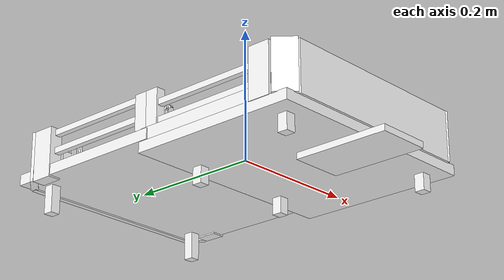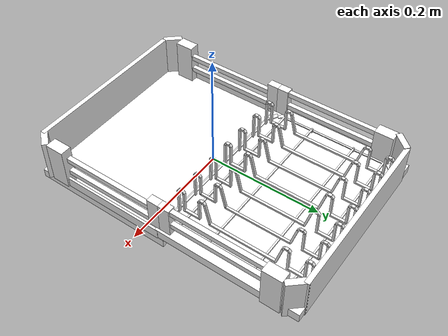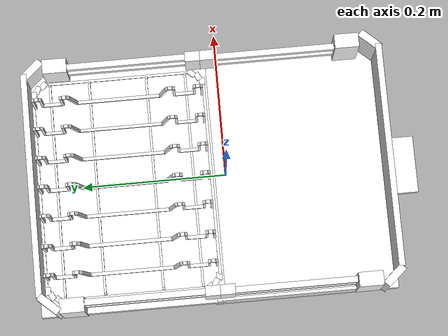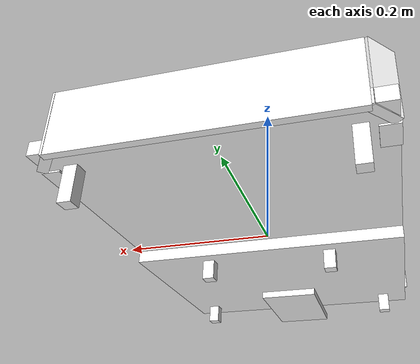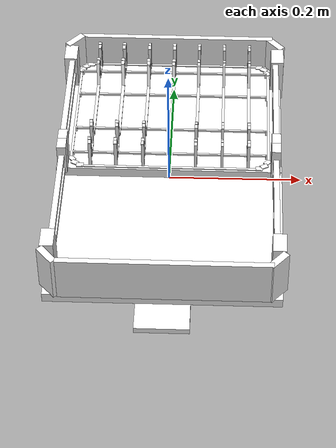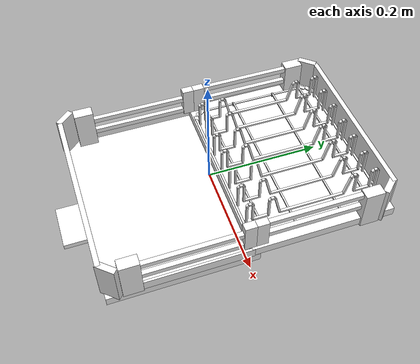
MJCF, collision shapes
<?xml version='1.0' encoding='utf-8'?>
<mujoco model="model">
  <option timestep="0.002" gravity="0.0 0.0 -9.81" />
  <compiler angle="radian" />
  <asset>
    <mesh file="visual/DishRack043.obj" name="DishRack043_vis" />
    <texture file="visual/T_BC001.png" name="DishRack043_material" type="2d" />
    <material name="DishRack043_material" rgba="1 1 1 1.0" texture="DishRack043_material" shininess="0.4472135901451111" specular="0.3103448502657381" />
  </asset>
  <default>
    <default class="visual">
      <geom conaffinity="0" contype="0" group="1" type="mesh" />
    </default>
    <default class="collision">
      <geom group="0" rgba="1 1 1 0.25" density="1.0" solref="0.004 1" solimp="0.998 0.998 0.001" />
    </default>
    <default class="spawn">
      <geom group="0" rgba="1 1 1 0.5" contype="0" conaffinity="0" />
      <site group="0" rgba="1 1 1 0.5" />
    </default>
    <default class="region">
      <geom group="1" conaffinity="0" contype="0" rgba="0 1 0 0" mass="0" />
    </default>
  </default>
  <worldbody>
    <body>
      <body name="object">
        <geom mesh="DishRack043_vis" type="mesh" solimp="0.998 0.998 0.001" solref="0.001 1" friction="0.95 0.3 0.1" class="visual" material="DishRack043_material" />
        <geom type="box" pos="0.03896216 0.25709257 0.02214538" size="0.0021935882978141308 0.0016422331100329757 0.024697119370102882" quat="1.0 0.0 0.0 0.0" class="collision" />
        <geom type="box" pos="0.03896216 0.25260389 0.04980291" size="0.0021935882978141308 0.002604088746011257 0.0016422334592789412" quat="1.0 0.0 0.0 0.0" class="collision" />
        <geom type="box" pos="0.03896216 0.25649837 0.04853795" size="0.0021935882978141308 0.0016422331100329757 0.0026040885131806135" quat="0.9381337761878967 0.3462730050086975 0.0 0.0" class="collision" />
        <geom type="box" pos="0.03896216 0.24839151 0.04853795" size="0.0021935882978141308 0.0016422331100329757 0.0026040885131806135" quat="0.9381337761878967 -0.3462729752063751 -0.0 0.0" class="collision" />
        <geom type="box" pos="0.03896216 0.24638367 0.02737632" size="0.0021935882978141308 0.0016422331100329757 0.019466185942292213" quat="1.0 0.0 0.0 0.0" class="collision" />
        <geom type="box" pos="0.03896216 0.23353635 0.00901940" size="0.0021935882978141308 0.013745232485234737 0.0016422347398474813" quat="1.0 0.0 0.0 0.0" class="collision" />
        <geom type="box" pos="0.03896216 0.21780705 0.04853795" size="0.0021935882978141308 0.0016422331100329757 0.0026040885131806135" quat="0.9381337761878967 0.3462730050086975 0.0 0.0" class="collision" />
        <geom type="box" pos="0.03896216 0.21391258 0.04980291" size="0.0021935882978141308 0.002604088746011257 0.0016422334592789412" quat="1.0 0.0 0.0 0.0" class="collision" />
        <geom type="box" pos="0.03896216 0.21847811 0.02715608" size="0.0021935882978141308 0.0016422331100329757 0.019686423242092133" quat="1.0 0.0 0.0 0.0" class="collision" />
        <geom type="box" pos="0.03896216 0.20943615 0.04853795" size="0.0021935882978141308 0.0016422331100329757 0.0026040885131806135" quat="0.9381337761878967 -0.3462729752063751 -0.0 0.0" class="collision" />
        <geom type="box" pos="0.16163384 0.12643725 0.02193887" size="0.004296645987778902 0.08586390316486359 0.004433894995599985" quat="1.0 0.0 0.0 0.0" class="collision" />
        <geom type="box" pos="0.03896216 0.20256731 0.02721483" size="0.0021935882978141308 0.0016422331100329757 0.019466185942292213" quat="0.9922520518302917 -0.12424127757549286 -0.0 0.0" class="collision" />
        <geom type="box" pos="0.03896216 0.13998248 0.00901940" size="0.0021935882978141308 0.058697909116744995 0.0016422402113676071" quat="1.0 0.0 0.0 0.0" class="collision" />
        <geom type="box" pos="0.03896216 0.07734039 0.02721483" size="0.0021935882978141308 0.0016422331100329757 0.019466185942292213" quat="0.9922520518302917 0.12424127757549286 0.0 0.0" class="collision" />
        <geom type="box" pos="0.03896216 0.07101356 0.04853795" size="0.0021935882978141308 0.0016422331100329757 0.0026040885131806135" quat="0.9381337761878967 0.3462730050086975 0.0 0.0" class="collision" />
        <geom type="box" pos="0.03896216 0.06217094 0.02715608" size="0.0021935882978141308 0.0016422331100329757 0.019686423242092133" quat="1.0 0.0 0.0 0.0" class="collision" />
        <geom type="box" pos="0.03896216 0.06725854 0.04980291" size="0.0021935882978141308 0.002604088746011257 0.0016422334592789412" quat="1.0 0.0 0.0 0.0" class="collision" />
        <geom type="box" pos="0.03896216 0.06336404 0.04853795" size="0.0021935882978141308 0.0016422331100329757 0.0026040885131806135" quat="0.9381337761878967 -0.3462730348110199 -0.0 0.0" class="collision" />
        <geom type="box" pos="0.03896216 0.04763477 0.00901940" size="0.0021935882978141308 0.013745232485234737 0.0016422347398474813" quat="1.0 0.0 0.0 0.0" class="collision" />
        <geom type="box" pos="0.03896216 0.03397269 0.02737632" size="0.0021935882978141308 0.0016422331100329757 0.019466185942292213" quat="1.0 0.0 0.0 0.0" class="collision" />
        <geom type="box" pos="0.03896216 0.03277958 0.04853795" size="0.0021935882978141308 0.0016422331100329757 0.0026040885131806135" quat="0.9381337761878967 0.3462730050086975 0.0 0.0" class="collision" />
        <geom type="box" pos="0.16142358 0.01259663 0.02913061" size="0.0069252923130989075 0.010232162661850452 0.02641100250184536" quat="1.0 0.0 0.0 0.0" class="collision" />
        <geom type="box" pos="0.03896216 0.02467273 0.04853795" size="0.0021935882978141308 0.0016422331100329757 0.0026040885131806135" quat="0.9381337761878967 -0.3462730348110199 -0.0 0.0" class="collision" />
        <geom type="box" pos="0.03896216 0.02856722 0.04980291" size="0.0021935882978141308 0.002604088746011257 0.0016422334592789412" quat="1.0 0.0 0.0 0.0" class="collision" />
        <geom type="box" pos="0.03896216 0.02347962 0.02214538" size="0.0021935882978141308 0.0016422331100329757 0.024697119370102882" quat="1.0 0.0 0.0 0.0" class="collision" />
        <geom type="box" pos="0.07956973 0.02347962 0.02214538" size="0.0019949167035520077 0.0016422331100329757 0.024697119370102882" quat="1.0 0.0 0.0 0.0" class="collision" />
        <geom type="box" pos="0.07956973 0.02856722 0.04980291" size="0.0019949167035520077 0.002604088746011257 0.0016422334592789412" quat="1.0 0.0 0.0 0.0" class="collision" />
        <geom type="box" pos="0.07956973 0.02467273 0.04853795" size="0.0019949167035520077 0.0016422331100329757 0.0026040885131806135" quat="0.9381337761878967 -0.3462730348110199 -0.0 0.0" class="collision" />
        <geom type="box" pos="0.07956973 0.03277958 0.04853795" size="0.0019949167035520077 0.0016422331100329757 0.0026040885131806135" quat="0.9381337761878967 0.3462730050086975 0.0 0.0" class="collision" />
        <geom type="box" pos="0.07956973 0.03397269 0.02737632" size="0.0019949167035520077 0.0016422331100329757 0.019466185942292213" quat="1.0 0.0 0.0 0.0" class="collision" />
        <geom type="box" pos="0.07956973 0.04763477 0.00901940" size="0.0019949167035520077 0.013745232485234737 0.0016422347398474813" quat="1.0 0.0 0.0 0.0" class="collision" />
        <geom type="box" pos="0.07956973 0.06336404 0.04853795" size="0.0019949167035520077 0.0016422331100329757 0.0026040885131806135" quat="0.9381337761878967 -0.3462730348110199 -0.0 0.0" class="collision" />
        <geom type="box" pos="0.16163384 0.12643725 0.04914567" size="0.004296611528843641 0.08586334437131882 0.004433860071003437" quat="1.0 0.0 0.0 0.0" class="collision" />
        <geom type="box" pos="0.07956973 0.06725854 0.04980291" size="0.0019949167035520077 0.002604088746011257 0.0016422334592789412" quat="1.0 0.0 0.0 0.0" class="collision" />
        <geom type="box" pos="0.07956973 0.06217094 0.02715608" size="0.0019949167035520077 0.0016422331100329757 0.019686423242092133" quat="1.0 0.0 0.0 0.0" class="collision" />
        <geom type="box" pos="0.07956973 0.07101356 0.04853795" size="0.0019949167035520077 0.0016422331100329757 0.0026040885131806135" quat="0.9381337761878967 0.3462730050086975 0.0 0.0" class="collision" />
        <geom type="box" pos="0.07956973 0.07734039 0.02721483" size="0.0019949167035520077 0.0016422331100329757 0.019466185942292213" quat="0.9922520518302917 0.12424127757549286 0.0 0.0" class="collision" />
        <geom type="box" pos="0.07956973 0.13998248 0.00901940" size="0.0019949167035520077 0.058697909116744995 0.0016422402113676071" quat="1.0 0.0 0.0 0.0" class="collision" />
        <geom type="box" pos="0.07956973 0.20289384 0.02721483" size="0.0019949167035520077 0.0016422331100329757 0.019466185942292213" quat="0.9922520518302917 -0.12424127757549286 -0.0 0.0" class="collision" />
        <geom type="box" pos="0.07956973 0.20970276 0.04853795" size="0.0019949167035520077 0.0016422331100329757 0.0026040885131806135" quat="0.9381337761878967 -0.3462729752063751 -0.0 0.0" class="collision" />
        <geom type="box" pos="0.07956973 0.21859965 0.02715608" size="0.0019949167035520077 0.0016422331100329757 0.019686423242092133" quat="1.0 0.0 0.0 0.0" class="collision" />
        <geom type="box" pos="0.07956973 0.21391258 0.04980291" size="0.0019949167035520077 0.002604088746011257 0.0016422334592789412" quat="1.0 0.0 0.0 0.0" class="collision" />
        <geom type="box" pos="0.07956973 0.21780705 0.04853795" size="0.0019949167035520077 0.0016422331100329757 0.0026040885131806135" quat="0.9381337761878967 0.3462730050086975 0.0 0.0" class="collision" />
        <geom type="box" pos="0.16163384 -0.08269323 0.00917841" size="0.0042965952306985855 0.08586309105157852 0.004433844238519669" quat="1.0 0.0 0.0 0.0" class="collision" />
        <geom type="box" pos="0.07956973 0.23353635 0.00901940" size="0.0019949167035520077 0.013745232485234737 0.0016422347398474813" quat="1.0 0.0 0.0 0.0" class="collision" />
        <geom type="box" pos="0.07956973 0.24639425 0.02737632" size="0.0019949167035520077 0.0016422331100329757 0.019466185942292213" quat="1.0 0.0 0.0 0.0" class="collision" />
        <geom type="box" pos="0.07956973 0.24839151 0.04853795" size="0.0019949167035520077 0.0016422331100329757 0.0026040885131806135" quat="0.9381337761878967 -0.3462729752063751 -0.0 0.0" class="collision" />
        <geom type="box" pos="0.07956973 0.25649837 0.04853795" size="0.0019949167035520077 0.0016422331100329757 0.0026040885131806135" quat="0.9381337761878967 0.3462730050086975 0.0 0.0" class="collision" />
        <geom type="box" pos="0.07956973 0.25260389 0.04980291" size="0.0019949167035520077 0.002604088746011257 0.0016422334592789412" quat="1.0 0.0 0.0 0.0" class="collision" />
        <geom type="box" pos="0.07956973 0.25707662 0.02214538" size="0.0019949167035520077 0.0016422331100329757 0.024697119370102882" quat="1.0 0.0 0.0 0.0" class="collision" />
        <geom type="box" pos="0.11997499 0.25728232 0.02214538" size="0.0022598111536353827 0.0016422331100329757 0.024697119370102882" quat="1.0 0.0 0.0 0.0" class="collision" />
        <geom type="box" pos="0.11997499 0.25200292 0.04980291" size="0.0022598111536353827 0.002604088746011257 0.0016422334592789412" quat="1.0 0.0 0.0 0.0" class="collision" />
        <geom type="box" pos="0.11997499 0.25572550 0.04853795" size="0.0022598111536353827 0.0016422331100329757 0.0026040885131806135" quat="0.9381337761878967 0.3462730050086975 0.0 0.0" class="collision" />
        <geom type="box" pos="0.11997499 0.24839151 0.04853795" size="0.0022598111536353827 0.0016422331100329757 0.0026040885131806135" quat="0.9381337761878967 -0.3462729752063751 -0.0 0.0" class="collision" />
        <geom type="box" pos="0.16142358 0.03288304 0.02913061" size="0.006925185211002827 0.010232055559754372 0.026410574093461037" quat="1.0 0.0 0.0 0.0" class="collision" />
        <geom type="box" pos="0.11997499 0.24638887 0.02737632" size="0.0022598111536353827 0.0016422331100329757 0.019466185942292213" quat="1.0 0.0 0.0 0.0" class="collision" />
        <geom type="box" pos="0.11997499 0.23353635 0.00901940" size="0.0022598111536353827 0.013745232485234737 0.0016422347398474813" quat="1.0 0.0 0.0 0.0" class="collision" />
        <geom type="box" pos="0.11997499 0.21780705 0.04853795" size="0.0022598111536353827 0.0016422331100329757 0.0026040885131806135" quat="0.9381337761878967 0.3462730050086975 0.0 0.0" class="collision" />
        <geom type="box" pos="0.11997499 0.21391258 0.04980291" size="0.0022598111536353827 0.002604088746011257 0.0016422334592789412" quat="1.0 0.0 0.0 0.0" class="collision" />
        <geom type="box" pos="0.11997499 0.21827221 0.02715608" size="0.0022598111536353827 0.0016422331100329757 0.019686423242092133" quat="1.0 0.0 0.0 0.0" class="collision" />
        <geom type="box" pos="0.11997499 0.20947787 0.04853795" size="0.0022598111536353827 0.0016422331100329757 0.0026040885131806135" quat="0.9381337761878967 -0.3462729752063751 -0.0 0.0" class="collision" />
        <geom type="box" pos="0.11997499 0.20315105 0.02721483" size="0.0022598111536353827 0.0016422331100329757 0.019466185942292213" quat="0.9922520518302917 -0.12424127757549286 -0.0 0.0" class="collision" />
        <geom type="box" pos="0.11997499 0.13998248 0.00901940" size="0.0022598111536353827 0.058697909116744995 0.0016422402113676071" quat="1.0 0.0 0.0 0.0" class="collision" />
        <geom type="box" pos="0.11997499 0.07734039 0.02721483" size="0.0022598111536353827 0.0016422331100329757 0.019466185942292213" quat="0.9922520518302917 0.12424127757549286 0.0 0.0" class="collision" />
        <geom type="box" pos="0.11997499 0.07101356 0.04853795" size="0.0022598111536353827 0.0016422331100329757 0.0026040885131806135" quat="0.9381337761878967 0.3462730050086975 0.0 0.0" class="collision" />
        <geom type="box" pos="0.15142194 0.13979307 -0.00057421" size="0.0017780435737222433 0.09852120280265808 0.0019775310065597296" quat="1.0 0.0 0.0 0.0" class="collision" />
        <geom type="box" pos="0.11997499 0.06217094 0.02715608" size="0.0022598111536353827 0.0016422331100329757 0.019686423242092133" quat="1.0 0.0 0.0 0.0" class="collision" />
        <geom type="box" pos="0.11997499 0.06725854 0.04980291" size="0.0022598111536353827 0.002604088746011257 0.0016422334592789412" quat="1.0 0.0 0.0 0.0" class="collision" />
        <geom type="box" pos="0.11997499 0.06336404 0.04853795" size="0.0022598111536353827 0.0016422331100329757 0.0026040885131806135" quat="0.9381337761878967 -0.3462730348110199 -0.0 0.0" class="collision" />
        <geom type="box" pos="0.11997499 0.04763477 0.00901940" size="0.0022598111536353827 0.013745232485234737 0.0016422347398474813" quat="1.0 0.0 0.0 0.0" class="collision" />
        <geom type="box" pos="0.11997499 0.03397269 0.02737632" size="0.0022598111536353827 0.0016422331100329757 0.019466185942292213" quat="1.0 0.0 0.0 0.0" class="collision" />
        <geom type="box" pos="0.11997499 0.03277958 0.04853795" size="0.0022598111536353827 0.0016422331100329757 0.0026040885131806135" quat="0.9381337761878967 0.3462730050086975 0.0 0.0" class="collision" />
        <geom type="box" pos="0.11997499 0.02467273 0.04853795" size="0.0022598111536353827 0.0016422331100329757 0.0026040885131806135" quat="0.9381337761878967 -0.3462730348110199 -0.0 0.0" class="collision" />
        <geom type="box" pos="0.11997499 0.02856722 0.04980291" size="0.0022598111536353827 0.002604088746011257 0.0016422334592789412" quat="1.0 0.0 0.0 0.0" class="collision" />
        <geom type="box" pos="-0.00226114 0.02034168 -0.00057421" size="0.1345529854297638 0.0018905960023403168 0.0019775310065597296" quat="1.0 0.0 0.0 0.0" class="collision" />
        <geom type="box" pos="0.11997499 0.02347962 0.02214538" size="0.0022598111536353827 0.0016422331100329757 0.024697119370102882" quat="1.0 0.0 0.0 0.0" class="collision" />
        <geom type="box" pos="0.00194502 -0.22481944 0.01906311" size="0.15439903736114502 0.00424325093626976 0.03723473846912384" quat="1.0 0.0 0.0 0.0" class="collision" />
        <geom type="box" pos="0.15007534 0.03593218 -0.00057421" size="0.0055984016507864 0.0038027572445571423 0.0019775310065597296" quat="0.9153963327407837 0.0 0.0 0.40255382657051086" class="collision" />
        <geom type="box" pos="0.14480247 0.02716099 -0.00057421" size="0.0055984016507864 0.003802757477387786 0.0019775310065597296" quat="0.9722712635993958 0.0 0.0 0.23385590314865112" class="collision" />
        <geom type="box" pos="0.13689319 0.02178672 -0.00057421" size="0.0055984016507864 0.0038027572445571423 0.0019775310065597296" quat="1.0 0.0 0.0 0.0" class="collision" />
        <geom type="box" pos="-0.00199388 0.14276811 -0.00817752" size="0.17322996258735657 0.12719184160232544 0.007986467331647873" quat="1.0 0.0 0.0 0.0" class="collision" />
        <geom type="box" pos="-0.17174959 -0.07040074 -0.00835647" size="0.002145120408385992 0.0980244055390358 0.009813633747398853" quat="1.0 0.0 0.0 0.0" class="collision" />
        <geom type="box" pos="0.16942621 -0.07417278 -0.00938883" size="0.0021451192442327738 0.09425228089094162 0.00878126546740532" quat="1.0 0.0 0.0 0.0" class="collision" />
        <geom type="box" pos="-0.00199388 -0.09792544 -0.02488240" size="0.17322969436645508 0.12778018414974213 0.0076754107140004635" quat="1.0 0.0 0.0 0.0" class="collision" />
        <geom type="box" pos="0.16163384 -0.08192070 0.03536293" size="0.004296523053199053 0.0858619287610054 0.004433772061020136" quat="1.0 0.0 0.0 0.0" class="collision" />
        <geom type="box" pos="-0.00118548 -0.19811986 -0.03974705" size="0.040118563920259476 0.07153138518333435 0.004666718188673258" quat="1.0 0.0 0.0 0.0" class="collision" />
        <geom type="box" pos="-0.08270725 0.00584863 -0.04103493" size="0.007474452257156372 0.00742047606036067 0.016205845400691032" quat="1.0 0.0 0.0 0.0" class="collision" />
        <geom type="box" pos="0.16107974 0.25477317 0.01906311" size="0.00543198874220252 0.017034603282809258 0.03723272681236267" quat="0.9338935613632202 0.0 0.0 0.35755112767219543" class="collision" />
        <geom type="box" pos="0.07795711 0.00584863 -0.04103493" size="0.007474446669220924 0.00742047093808651 0.016205834224820137" quat="1.0 0.0 0.0 0.0" class="collision" />
        <geom type="box" pos="0.13892076 -0.19537613 -0.04103493" size="0.007474441546946764 0.007420465350151062 0.01620582491159439" quat="1.0 0.0 0.0 0.0" class="collision" />
        <geom type="box" pos="-0.14136603 -0.19537613 -0.04103493" size="0.007474435959011316 0.007420460227876902 0.016205813735723495" quat="1.0 0.0 0.0 0.0" class="collision" />
        <geom type="box" pos="-0.14136603 0.23852895 -0.03111233" size="0.007474430836737156 0.007420454639941454 0.02612927556037903" quat="1.0 0.0 0.0 0.0" class="collision" />
        <geom type="box" pos="0.13892076 0.23852895 -0.03111233" size="0.007474425248801708 0.0074204495176672935 0.026129253208637238" quat="1.0 0.0 0.0 0.0" class="collision" />
        <geom type="box" pos="-0.15047433 0.23532298 -0.00227023" size="0.0014011856401339173 0.0014466021675616503 0.009904539212584496" quat="1.0 0.0 0.0 0.0" class="collision" />
        <geom type="box" pos="-0.00192653 0.23522073 0.00596236" size="0.14907091856002808 0.0014466021675616503 0.0015131211839616299" quat="1.0 0.0 0.0 0.0" class="collision" />
        <geom type="box" pos="0.14796724 0.23532298 -0.00227023" size="0.0014011856401339173 0.0014466021675616503 0.009904539212584496" quat="1.0 0.0 0.0 0.0" class="collision" />
        <geom type="box" pos="0.14796724 0.17973369 -0.00227023" size="0.0014011856401339173 0.0014466021675616503 0.009904539212584496" quat="1.0 0.0 0.0 0.0" class="collision" />
        <geom type="box" pos="-0.00192653 0.18011342 0.00596236" size="0.14907091856002808 0.0014466021675616503 0.0015131211839616299" quat="1.0 0.0 0.0 0.0" class="collision" />
        <geom type="box" pos="0.16442284 0.22353074 0.01906311" size="0.009924275800585747 0.016742099076509476 0.03723433241248131" quat="1.0 0.0 0.0 0.0" class="collision" />
        <geom type="box" pos="-0.15047433 0.17973369 -0.00227023" size="0.0014011856401339173 0.0014466021675616503 0.009904539212584496" quat="1.0 0.0 0.0 0.0" class="collision" />
        <geom type="box" pos="-0.15047433 0.09944265 -0.00227023" size="0.0014011856401339173 0.0014466021675616503 0.009904539212584496" quat="1.0 0.0 0.0 0.0" class="collision" />
        <geom type="box" pos="-0.00192653 0.09986304 0.00596236" size="0.14907091856002808 0.0014466021675616503 0.0015131211839616299" quat="1.0 0.0 0.0 0.0" class="collision" />
        <geom type="box" pos="0.14796724 0.09944265 -0.00227023" size="0.0014011856401339173 0.0014466021675616503 0.009904539212584496" quat="1.0 0.0 0.0 0.0" class="collision" />
        <geom type="box" pos="0.14796724 0.04529065 -0.00227023" size="0.0014011856401339173 0.0014466021675616503 0.009904539212584496" quat="1.0 0.0 0.0 0.0" class="collision" />
        <geom type="box" pos="-0.00192653 0.04518839 0.00596236" size="0.14907091856002808 0.0014466021675616503 0.0015131211839616299" quat="1.0 0.0 0.0 0.0" class="collision" />
        <geom type="box" pos="-0.15047433 0.04529065 -0.00227023" size="0.0014011856401339173 0.0014466021675616503 0.009904539212584496" quat="1.0 0.0 0.0 0.0" class="collision" />
        <geom type="box" pos="0.13689319 0.25889170 -0.00057421" size="0.0055984016507864 0.0038027572445571423 0.0019775310065597296" quat="1.0 0.0 0.0 0.0" class="collision" />
        <geom type="box" pos="0.14480247 0.25351745 -0.00057421" size="0.0055984016507864 0.0038027572445571423 0.0019775310065597296" quat="0.9722712635993958 0.0 -0.0 -0.23385585844516754" class="collision" />
        <geom type="box" pos="0.15007534 0.24474622 -0.00057421" size="0.0055984016507864 0.003802757477387786 0.0019775310065597296" quat="0.9153962731361389 0.0 -0.0 -0.40255388617515564" class="collision" />
        <geom type="box" pos="0.00194502 0.26663047 0.01906311" size="0.1543966382741928 0.004243175964802504 0.03723413869738579" quat="1.0 0.0 0.0 0.0" class="collision" />
        <geom type="box" pos="0.16442284 -0.18171971 0.01906311" size="0.009924222715198994 0.01674199290573597 0.037234116345644" quat="1.0 0.0 0.0 0.0" class="collision" />
        <geom type="box" pos="-0.00226114 0.26033673 -0.00057421" size="0.1345529854297638 0.0018905960023403168 0.0019775310065597296" quat="1.0 0.0 0.0 0.0" class="collision" />
        <geom type="box" pos="-0.15243196 0.24474622 -0.00057421" size="0.0055984016507864 0.003802757477387786 0.0019775310065597296" quat="0.9153962731361389 0.0 0.0 0.40255388617515564" class="collision" />
        <geom type="box" pos="-0.14715909 0.25351745 -0.00057421" size="0.0055984016507864 0.0038027572445571423 0.0019775310065597296" quat="0.9722712635993958 0.0 0.0 0.23385585844516754" class="collision" />
        <geom type="box" pos="-0.13924980 0.25889170 -0.00057421" size="0.0055984016507864 0.0038027572445571423 0.0019775310065597296" quat="1.0 0.0 0.0 0.0" class="collision" />
        <geom type="box" pos="-0.15377856 0.13979307 -0.00057421" size="0.0017780435737222433 0.09852120280265808 0.0019775310065597296" quat="1.0 0.0 0.0 0.0" class="collision" />
        <geom type="box" pos="-0.13924980 0.02178672 -0.00057421" size="0.0055984016507864 0.0038027572445571423 0.0019775310065597296" quat="1.0 0.0 0.0 0.0" class="collision" />
        <geom type="box" pos="-0.14715909 0.02716099 -0.00057421" size="0.0055984016507864 0.0038027572445571423 0.0019775310065597296" quat="0.9722712635993958 0.0 -0.0 -0.23385585844516754" class="collision" />
        <geom type="box" pos="-0.15243196 0.03593218 -0.00057421" size="0.0055984016507864 0.003802757477387786 0.0019775310065597296" quat="0.9153962731361389 0.0 -0.0 -0.40255388617515564" class="collision" />
        <geom type="box" pos="-0.04175606 0.25719145 0.02214538" size="0.002259810920804739 0.0016422331100329757 0.024697119370102882" quat="1.0 0.0 0.0 0.0" class="collision" />
        <geom type="box" pos="-0.04175607 0.25260389 0.04980291" size="0.002259810920804739 0.002604088746011257 0.0016422334592789412" quat="1.0 0.0 0.0 0.0" class="collision" />
        <geom type="box" pos="-0.16651748 0.22353071 0.01906311" size="0.010019510984420776 0.01674191653728485 0.03723396733403206" quat="1.0 0.0 0.0 0.0" class="collision" />
        <geom type="box" pos="-0.04175607 0.25649837 0.04853795" size="0.002259810920804739 0.0016422331100329757 0.0026040885131806135" quat="0.9381337761878967 0.3462730050086975 0.0 0.0" class="collision" />
        <geom type="box" pos="-0.04175607 0.24839151 0.04853795" size="0.002259810920804739 0.0016422331100329757 0.0026040885131806135" quat="0.9381337761878967 -0.3462729752063751 -0.0 0.0" class="collision" />
        <geom type="box" pos="-0.04175607 0.24617736 0.02737632" size="0.002259810920804739 0.0016422331100329757 0.019466185942292213" quat="1.0 0.0 0.0 0.0" class="collision" />
        <geom type="box" pos="-0.04175607 0.23353635 0.00901940" size="0.002259810920804739 0.013745232485234737 0.0016422347398474813" quat="1.0 0.0 0.0 0.0" class="collision" />
        <geom type="box" pos="-0.04175607 0.21780705 0.04853795" size="0.002259810920804739 0.0016422331100329757 0.0026040885131806135" quat="0.9381337761878967 0.3462730050086975 0.0 0.0" class="collision" />
        <geom type="box" pos="-0.04175607 0.21391258 0.04980291" size="0.002259810920804739 0.002604088746011257 0.0016422334592789412" quat="1.0 0.0 0.0 0.0" class="collision" />
        <geom type="box" pos="-0.04175607 0.21820119 0.02715608" size="0.002259810920804739 0.0016422331100329757 0.019686423242092133" quat="1.0 0.0 0.0 0.0" class="collision" />
        <geom type="box" pos="-0.04175607 0.21015754 0.04853795" size="0.002259810920804739 0.0016422331100329757 0.0026040885131806135" quat="0.9381337761878967 -0.3462729752063751 -0.0 0.0" class="collision" />
        <geom type="box" pos="-0.04175607 0.20291384 0.02721483" size="0.002259810920804739 0.0016422331100329757 0.019466185942292213" quat="0.9922520518302917 -0.12424127757549286 -0.0 0.0" class="collision" />
        <geom type="box" pos="-0.04175607 0.13998248 0.00901940" size="0.002259810920804739 0.058697909116744995 0.0016422402113676071" quat="1.0 0.0 0.0 0.0" class="collision" />
        <geom type="box" pos="-0.16246035 0.25392410 0.01998952" size="0.00543198874220252 0.017034603282809258 0.03723272681236267" quat="0.9338935613632202 0.0 -0.0 -0.35755112767219543" class="collision" />
        <geom type="box" pos="-0.04175607 0.07734039 0.02721483" size="0.002259810920804739 0.0016422331100329757 0.019466185942292213" quat="0.9922520518302917 0.12424127757549286 0.0 0.0" class="collision" />
        <geom type="box" pos="-0.04175607 0.07101356 0.04853795" size="0.002259810920804739 0.0016422331100329757 0.0026040885131806135" quat="0.9381337761878967 0.3462730050086975 0.0 0.0" class="collision" />
        <geom type="box" pos="-0.04175607 0.06217094 0.02715608" size="0.002259810920804739 0.0016422331100329757 0.019686423242092133" quat="1.0 0.0 0.0 0.0" class="collision" />
        <geom type="box" pos="-0.04175607 0.06725854 0.04980291" size="0.002259810920804739 0.002604088746011257 0.0016422334592789412" quat="1.0 0.0 0.0 0.0" class="collision" />
        <geom type="box" pos="-0.04175607 0.06336404 0.04853795" size="0.002259810920804739 0.0016422331100329757 0.0026040885131806135" quat="0.9381337761878967 -0.3462730348110199 -0.0 0.0" class="collision" />
        <geom type="box" pos="-0.04175607 0.04763477 0.00901940" size="0.002259810920804739 0.013745232485234737 0.0016422347398474813" quat="1.0 0.0 0.0 0.0" class="collision" />
        <geom type="box" pos="-0.04175607 0.03397269 0.02737632" size="0.002259810920804739 0.0016422331100329757 0.019466185942292213" quat="1.0 0.0 0.0 0.0" class="collision" />
        <geom type="box" pos="-0.04175607 0.03277958 0.04853795" size="0.002259810920804739 0.0016422331100329757 0.0026040885131806135" quat="0.9381337761878967 0.3462730050086975 0.0 0.0" class="collision" />
        <geom type="box" pos="-0.04175607 0.02467273 0.04853795" size="0.002259810920804739 0.0016422331100329757 0.0026040885131806135" quat="0.9381337761878967 -0.3462730348110199 -0.0 0.0" class="collision" />
        <geom type="box" pos="-0.04175607 0.02856722 0.04980291" size="0.002259810920804739 0.002604088746011257 0.0016422334592789412" quat="1.0 0.0 0.0 0.0" class="collision" />
        <geom type="box" pos="-0.16472041 -0.21426877 0.01906311" size="0.00543198874220252 0.017034603282809258 0.03723272681236267" quat="0.9338935613632202 0.0 0.0 0.35755112767219543" class="collision" />
        <geom type="box" pos="-0.04175606 0.02347962 0.02214538" size="0.002259810920804739 0.0016422331100329757 0.024697119370102882" quat="1.0 0.0 0.0 0.0" class="collision" />
        <geom type="box" pos="-0.12287875 0.02347962 0.02214538" size="0.0023657693527638912 0.0016422331100329757 0.024697119370102882" quat="1.0 0.0 0.0 0.0" class="collision" />
        <geom type="box" pos="-0.12287876 0.02856722 0.04980291" size="0.0023657693527638912 0.002604088746011257 0.0016422334592789412" quat="1.0 0.0 0.0 0.0" class="collision" />
        <geom type="box" pos="-0.12287876 0.02467273 0.04853795" size="0.0023657693527638912 0.0016422331100329757 0.0026040885131806135" quat="0.9381337761878967 -0.3462730348110199 -0.0 0.0" class="collision" />
        <geom type="box" pos="-0.12287876 0.03277958 0.04853795" size="0.0023657693527638912 0.0016422331100329757 0.0026040885131806135" quat="0.9381337761878967 0.3462730050086975 0.0 0.0" class="collision" />
        <geom type="box" pos="-0.12287876 0.03397269 0.02737632" size="0.0023657693527638912 0.0016422331100329757 0.019466185942292213" quat="1.0 0.0 0.0 0.0" class="collision" />
        <geom type="box" pos="-0.12287876 0.04763477 0.00901940" size="0.0023657693527638912 0.013745232485234737 0.0016422347398474813" quat="1.0 0.0 0.0 0.0" class="collision" />
        <geom type="box" pos="-0.12287876 0.06336404 0.04853795" size="0.0023657693527638912 0.0016422331100329757 0.0026040885131806135" quat="0.9381337761878967 -0.3462730348110199 -0.0 0.0" class="collision" />
        <geom type="box" pos="-0.12287876 0.06725854 0.04980291" size="0.0023657693527638912 0.002604088746011257 0.0016422334592789412" quat="1.0 0.0 0.0 0.0" class="collision" />
        <geom type="box" pos="-0.12287876 0.06217094 0.02715608" size="0.0023657693527638912 0.0016422331100329757 0.019686423242092133" quat="1.0 0.0 0.0 0.0" class="collision" />
        <geom type="box" pos="-0.16661280 -0.18171969 0.01906311" size="0.009924088604748249 0.01674172468483448 0.03723357990384102" quat="1.0 0.0 0.0 0.0" class="collision" />
        <geom type="box" pos="-0.12287876 0.07101356 0.04853795" size="0.0023657693527638912 0.0016422331100329757 0.0026040885131806135" quat="0.9381337761878967 0.3462730050086975 0.0 0.0" class="collision" />
        <geom type="box" pos="-0.12287876 0.07734039 0.02721483" size="0.0023657693527638912 0.0016422331100329757 0.019466185942292213" quat="0.9922520518302917 0.12424127757549286 0.0 0.0" class="collision" />
        <geom type="box" pos="-0.12266118 0.13998248 0.00901940" size="0.0023657693527638912 0.058697909116744995 0.0016422402113676071" quat="1.0 0.0 0.0 0.0" class="collision" />
        <geom type="box" pos="-0.12266118 0.20301940 0.02721483" size="0.0023657693527638912 0.0016422331100329757 0.019466185942292213" quat="0.9922520518302917 -0.12424127757549286 -0.0 0.0" class="collision" />
        <geom type="box" pos="-0.12236745 0.21015754 0.04853795" size="0.0023657693527638912 0.0016422331100329757 0.0026040885131806135" quat="0.9381337761878967 -0.3462729752063751 -0.0 0.0" class="collision" />
        <geom type="box" pos="-0.12266118 0.21856627 0.02715608" size="0.0023657693527638912 0.0016422331100329757 0.019686423242092133" quat="1.0 0.0 0.0 0.0" class="collision" />
        <geom type="box" pos="-0.12236745 0.21391258 0.04980291" size="0.0023657693527638912 0.002604088746011257 0.0016422334592789412" quat="1.0 0.0 0.0 0.0" class="collision" />
        <geom type="box" pos="-0.12236745 0.21704070 0.04853795" size="0.0023657693527638912 0.0016422331100329757 0.0026040885131806135" quat="0.9381337761878967 0.3462730050086975 0.0 0.0" class="collision" />
        <geom type="box" pos="-0.12266118 0.23353635 0.00901940" size="0.0023657693527638912 0.013745232485234737 0.0016422347398474813" quat="1.0 0.0 0.0 0.0" class="collision" />
        <geom type="box" pos="-0.12270835 0.24639422 0.02737632" size="0.0023657693527638912 0.0016422331100329757 0.019466185942292213" quat="1.0 0.0 0.0 0.0" class="collision" />
        <geom type="box" pos="-0.16382379 -0.08269323 0.03491490" size="0.0042963782325387 0.08585961908102036 0.004433627240359783" quat="1.0 0.0 0.0 0.0" class="collision" />
        <geom type="box" pos="-0.12266118 0.24839151 0.04853795" size="0.0023657693527638912 0.0016422331100329757 0.0026040885131806135" quat="0.9381337761878967 -0.3462729752063751 -0.0 0.0" class="collision" />
        <geom type="box" pos="-0.12278029 0.25649837 0.04853795" size="0.0023657693527638912 0.0016422331100329757 0.0026040885131806135" quat="0.9381337761878967 0.3462730050086975 0.0 0.0" class="collision" />
        <geom type="box" pos="-0.12278029 0.25260389 0.04980291" size="0.0023657693527638912 0.002604088746011257 0.0016422334592789412" quat="1.0 0.0 0.0 0.0" class="collision" />
        <geom type="box" pos="-0.12257584 0.25662270 0.02214538" size="0.0023657693527638912 0.0016422331100329757 0.024697119370102882" quat="1.0 0.0 0.0 0.0" class="collision" />
        <geom type="box" pos="-0.08267161 0.25703454 0.02214538" size="0.0025247051380574703 0.0016422331100329757 0.024697119370102882" quat="1.0 0.0 0.0 0.0" class="collision" />
        <geom type="box" pos="-0.08300951 0.25260389 0.04980291" size="0.0025247051380574703 0.002604088746011257 0.0016422334592789412" quat="1.0 0.0 0.0 0.0" class="collision" />
        <geom type="box" pos="-0.08300951 0.25649837 0.04853795" size="0.0025247051380574703 0.0016422331100329757 0.0026040885131806135" quat="0.9381337761878967 0.3462730050086975 0.0 0.0" class="collision" />
        <geom type="box" pos="-0.08300951 0.24839151 0.04853795" size="0.0025247051380574703 0.0016422331100329757 0.0026040885131806135" quat="0.9381337761878967 -0.3462729752063751 -0.0 0.0" class="collision" />
        <geom type="box" pos="-0.08281928 0.24627756 0.02737632" size="0.0025247051380574703 0.0016422331100329757 0.019466185942292213" quat="1.0 0.0 0.0 0.0" class="collision" />
        <geom type="box" pos="-0.08278458 0.23353635 0.00901940" size="0.0025247051380574703 0.013745232485234737 0.0016422347398474813" quat="1.0 0.0 0.0 0.0" class="collision" />
        <geom type="box" pos="-0.16361354 0.03288304 0.02913061" size="0.006924751214683056 0.0102316215634346 0.026408838108181953" quat="1.0 0.0 0.0 0.0" class="collision" />
        <geom type="box" pos="-0.08301634 0.21780705 0.04853795" size="0.0025247051380574703 0.0016422331100329757 0.0026040885131806135" quat="0.9381337761878967 0.3462730050086975 0.0 0.0" class="collision" />
        <geom type="box" pos="-0.08301634 0.21391258 0.04980291" size="0.0025247051380574703 0.002604088746011257 0.0016422334592789412" quat="1.0 0.0 0.0 0.0" class="collision" />
        <geom type="box" pos="-0.08277980 0.21834156 0.02715608" size="0.0025247051380574703 0.0016422331100329757 0.019686423242092133" quat="1.0 0.0 0.0 0.0" class="collision" />
        <geom type="box" pos="-0.08301634 0.20963320 0.04853795" size="0.0025247051380574703 0.0016422331100329757 0.0026040885131806135" quat="0.9381337761878967 -0.3462729752063751 -0.0 0.0" class="collision" />
        <geom type="box" pos="-0.08293331 0.20287582 0.02721483" size="0.0025247051380574703 0.0016422331100329757 0.019466185942292213" quat="0.9922520518302917 -0.12424127757549286 -0.0 0.0" class="collision" />
        <geom type="box" pos="-0.08278458 0.13998248 0.00901940" size="0.0025247051380574703 0.058697909116744995 0.0016422402113676071" quat="1.0 0.0 0.0 0.0" class="collision" />
        <geom type="box" pos="-0.08332066 0.07734039 0.02721483" size="0.0025247051380574703 0.0016422331100329757 0.019466185942292213" quat="0.9922520518302917 0.12424127757549286 0.0 0.0" class="collision" />
        <geom type="box" pos="-0.08332066 0.07101356 0.04853795" size="0.0025247051380574703 0.0016422331100329757 0.0026040885131806135" quat="0.9381337761878967 0.3462730050086975 0.0 0.0" class="collision" />
        <geom type="box" pos="-0.08332066 0.06217094 0.02715608" size="0.0025247051380574703 0.0016422331100329757 0.019686423242092133" quat="1.0 0.0 0.0 0.0" class="collision" />
        <geom type="box" pos="-0.08332066 0.06725854 0.04980291" size="0.0025247051380574703 0.002604088746011257 0.0016422334592789412" quat="1.0 0.0 0.0 0.0" class="collision" />
        <geom type="box" pos="-0.16382381 -0.08269323 0.00917841" size="0.004296343307942152 0.08585906028747559 0.004433592315763235" quat="1.0 0.0 0.0 0.0" class="collision" />
        <geom type="box" pos="-0.08332066 0.06336404 0.04853795" size="0.0025247051380574703 0.0016422331100329757 0.0026040885131806135" quat="0.9381337761878967 -0.3462730348110199 -0.0 0.0" class="collision" />
        <geom type="box" pos="-0.08332066 0.04763477 0.00901940" size="0.0025247051380574703 0.013745232485234737 0.0016422347398474813" quat="1.0 0.0 0.0 0.0" class="collision" />
        <geom type="box" pos="-0.08332066 0.03397269 0.02737632" size="0.0025247051380574703 0.0016422331100329757 0.019466185942292213" quat="1.0 0.0 0.0 0.0" class="collision" />
        <geom type="box" pos="-0.08332066 0.03277958 0.04853795" size="0.0025247051380574703 0.0016422331100329757 0.0026040885131806135" quat="0.9381337761878967 0.3462730050086975 0.0 0.0" class="collision" />
        <geom type="box" pos="-0.08332066 0.02467273 0.04853795" size="0.0025247051380574703 0.0016422331100329757 0.0026040885131806135" quat="0.9381337761878967 -0.3462730348110199 -0.0 0.0" class="collision" />
        <geom type="box" pos="-0.08332066 0.02856722 0.04980291" size="0.0025247051380574703 0.002604088746011257 0.0016422334592789412" quat="1.0 0.0 0.0 0.0" class="collision" />
        <geom type="box" pos="-0.08332065 0.02347962 0.02214538" size="0.0025247051380574703 0.0016422331100329757 0.024697119370102882" quat="1.0 0.0 0.0 0.0" class="collision" />
        <geom type="box" pos="-0.00114892 0.02347962 0.02214538" size="0.002458479953929782 0.0016422331100329757 0.024697119370102882" quat="1.0 0.0 0.0 0.0" class="collision" />
        <geom type="box" pos="-0.00114892 0.02856722 0.04980291" size="0.002458479953929782 0.002604088746011257 0.0016422334592789412" quat="1.0 0.0 0.0 0.0" class="collision" />
        <geom type="box" pos="-0.00114892 0.02467273 0.04853795" size="0.002458479953929782 0.0016422331100329757 0.0026040885131806135" quat="0.9381337761878967 -0.3462730348110199 -0.0 0.0" class="collision" />
        <geom type="box" pos="-0.16382381 0.12643725 0.04914567" size="0.00429632468149066 0.08585876226425171 0.004433573689311743" quat="1.0 0.0 0.0 0.0" class="collision" />
        <geom type="box" pos="-0.00114892 0.03277958 0.04853795" size="0.002458479953929782 0.0016422331100329757 0.0026040885131806135" quat="0.9381337761878967 0.3462730050086975 0.0 0.0" class="collision" />
        <geom type="box" pos="-0.00114892 0.03397269 0.02737632" size="0.002458479953929782 0.0016422331100329757 0.019466185942292213" quat="1.0 0.0 0.0 0.0" class="collision" />
        <geom type="box" pos="-0.00114892 0.04763477 0.00901940" size="0.002458479953929782 0.013745232485234737 0.0016422347398474813" quat="1.0 0.0 0.0 0.0" class="collision" />
        <geom type="box" pos="-0.00114892 0.06336404 0.04853795" size="0.002458479953929782 0.0016422331100329757 0.0026040885131806135" quat="0.9381337761878967 -0.3462730348110199 -0.0 0.0" class="collision" />
        <geom type="box" pos="-0.00114892 0.06725854 0.04980291" size="0.002458479953929782 0.002604088746011257 0.0016422334592789412" quat="1.0 0.0 0.0 0.0" class="collision" />
        <geom type="box" pos="-0.00114892 0.06217094 0.02715608" size="0.002458479953929782 0.0016422331100329757 0.019686423242092133" quat="1.0 0.0 0.0 0.0" class="collision" />
        <geom type="box" pos="-0.00114892 0.07101356 0.04853795" size="0.002458479953929782 0.0016422331100329757 0.0026040885131806135" quat="0.9381337761878967 0.3462730050086975 0.0 0.0" class="collision" />
        <geom type="box" pos="-0.00114892 0.07734039 0.02721483" size="0.002458479953929782 0.0016422331100329757 0.019466185942292213" quat="0.9922520518302917 0.12424127757549286 0.0 0.0" class="collision" />
        <geom type="box" pos="-0.00114892 0.13998248 0.00901940" size="0.002458479953929782 0.058697909116744995 0.0016422402113676071" quat="1.0 0.0 0.0 0.0" class="collision" />
        <geom type="box" pos="-0.00114892 0.20303841 0.02721483" size="0.002458479953929782 0.0016422331100329757 0.019466185942292213" quat="0.9922520518302917 -0.12424127757549286 -0.0 0.0" class="collision" />
        <geom type="box" pos="-0.16361354 0.01259663 0.02913061" size="0.0069246492348611355 0.010231520049273968 0.026408430188894272" quat="1.0 0.0 0.0 0.0" class="collision" />
        <geom type="box" pos="-0.00114892 0.20936523 0.04853795" size="0.002458479953929782 0.0016422331100329757 0.0026040885131806135" quat="0.9381337761878967 -0.3462729752063751 -0.0 0.0" class="collision" />
        <geom type="box" pos="-0.00114892 0.21854012 0.02715608" size="0.002458479953929782 0.0016422331100329757 0.019686423242092133" quat="1.0 0.0 0.0 0.0" class="collision" />
        <geom type="box" pos="-0.00114892 0.21391258 0.04980291" size="0.002458479953929782 0.002604088746011257 0.0016422334592789412" quat="1.0 0.0 0.0 0.0" class="collision" />
        <geom type="box" pos="-0.00114892 0.21780705 0.04853795" size="0.002458479953929782 0.0016422331100329757 0.0026040885131806135" quat="0.9381337761878967 0.3462730050086975 0.0 0.0" class="collision" />
        <geom type="box" pos="-0.00114892 0.23353635 0.00901940" size="0.002458479953929782 0.013745232485234737 0.0016422347398474813" quat="1.0 0.0 0.0 0.0" class="collision" />
        <geom type="box" pos="-0.00114892 0.24620757 0.02737632" size="0.002458479953929782 0.0016422331100329757 0.019466185942292213" quat="1.0 0.0 0.0 0.0" class="collision" />
        <geom type="box" pos="-0.00114892 0.24839151 0.04853795" size="0.002458479953929782 0.0016422331100329757 0.0026040885131806135" quat="0.9381337761878967 -0.3462729752063751 -0.0 0.0" class="collision" />
        <geom type="box" pos="-0.00114892 0.25649837 0.04853795" size="0.002458479953929782 0.0016422331100329757 0.0026040885131806135" quat="0.9381337761878967 0.3462730050086975 0.0 0.0" class="collision" />
        <geom type="box" pos="-0.00114892 0.25260389 0.04980291" size="0.002458479953929782 0.002604088746011257 0.0016422334592789412" quat="1.0 0.0 0.0 0.0" class="collision" />
        <geom type="box" pos="-0.00114892 0.25719196 0.02214538" size="0.002458479953929782 0.0016422331100329757 0.024697119370102882" quat="1.0 0.0 0.0 0.0" class="collision" />
        <geom type="box" pos="-0.16382381 0.12643725 0.02193887" size="0.004296289756894112 0.08585820347070694 0.004433538764715195" quat="1.0 0.0 0.0 0.0" class="collision" />
        <geom type="box" pos="0.16253044 -0.21426879 0.01906311" size="0.00543198874220252 0.017034603282809258 0.03723272681236267" quat="0.9338935613632202 0.0 -0.0 -0.35755112767219543" class="collision" />
        <geom class="region" name="reg_int_0" type="box" pos="-0.0004602499999999954 -0.10102126 0.07227276499999999" size="0.15278168 0.1148853 0.089044655" />
        <geom size="0.17972509 0.27349471 0.059908365000000005" pos="0.0 0.0 0.0" name="reg_bbox" class="region" type="box" quat="1.0 0.0 0.0 0.0" />
        </body>
    </body>
  </worldbody>
  <actuator />
</mujoco>
